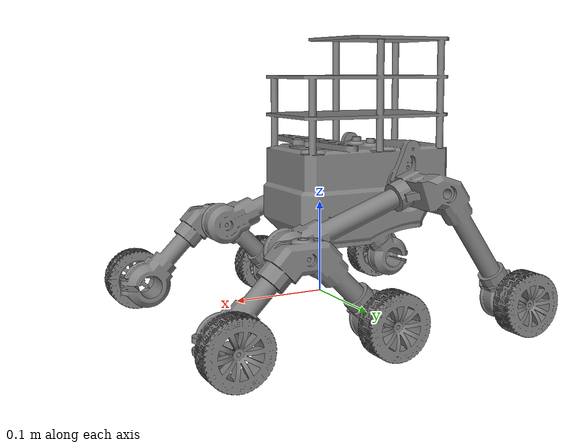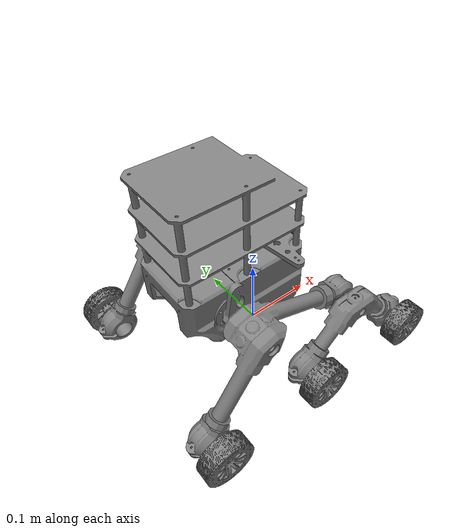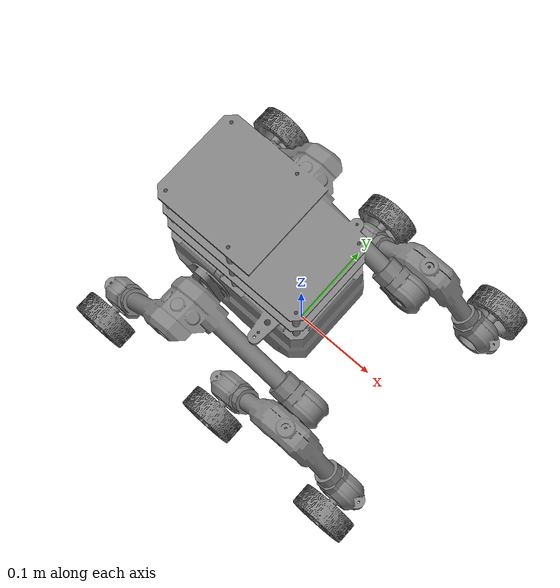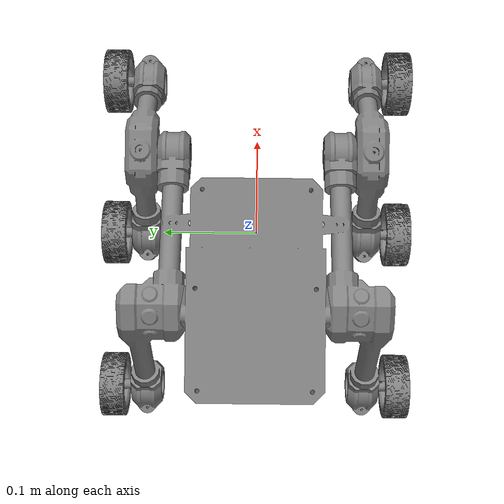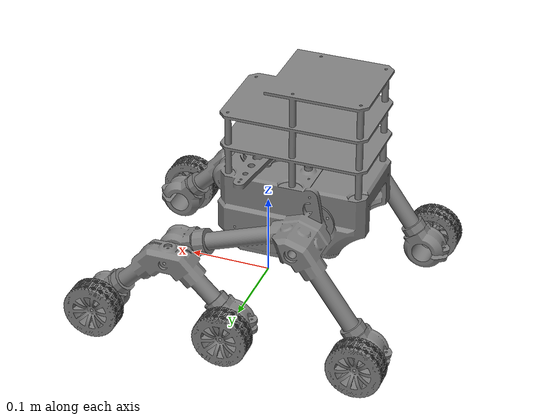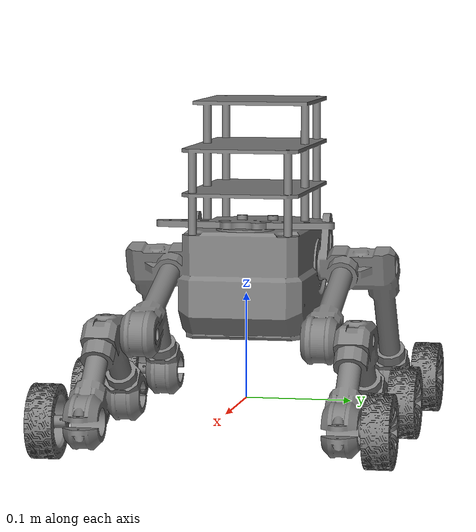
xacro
<?xml version="1.0"?>
<robot xmlns:xacro="http://www.ros.org/wiki/xacro" >

    <xacro:include filename="inertial_macros.xacro"/>

    <xacro:property name="chassis_length" value="0.299258"/>
    <xacro:property name="chassis_width" value="0.264"/>
    <xacro:property name="chassis_height" value="0.304902"/>
    <xacro:property name="chassis_mass" value="1.225156"/>
    <xacro:property name="arm_length" value="0.222788"/>
    <xacro:property name="arm_width" value="0.033"/>
    <xacro:property name="arm_height" value="0.111472"/>
    <xacro:property name="arm_mass" value="0.17912"/>
    <xacro:property name="wheel_radius" value="0.034"/>
    <xacro:property name="wheel_thickness" value="0.03085"/>
    <xacro:property name="wheel_mass" value="0.045987"/>

    <material name="grey">
        <color rgba="0.5 0.5 0.5 1"/>
    </material>

    <material name="red">
        <color rgba="1 0 0 1"/>
    </material>

    <!-- BASE LINK -->

    <link name ="base_link">

    </link>

    <!-- CHASSIS LINK -->

    <joint name="chassis_joint" type="fixed">
        <parent link="base_link"/>
        <child link="chassis"/>
        <origin xyz="0.046565 0 0.098366"/>
    </joint>

    <link name="chassis">
        <visual>
            <origin xyz="0 0 0"/>
            <geometry>
                <mesh filename="file:///home/shivam/rover_ws/src/rover_bot/description/meshes/chassis.stl"/>
            </geometry>
            <material name="grey"/>
        </visual>
        <collision>
            <origin xyz="-0.091666 0 0.028837"/>
            <geometry>
                <box size="${chassis_length} ${chassis_width} ${chassis_height}"/>
            </geometry>
        </collision>
        <inertial>
            <mass value="1.225156"/>
            <inertia ixx="0.01117" ixy="0.000002132725" ixz="-0.0002573" iyx="0.000002132725" iyy="0.01053" iyz="0.000005544541" izx="-0.0002573" izy="0.000005544541" izz="0.01191"/>
            <origin xyz="-0.091666 0.0 0.028837" rpy="0 0 0"/>
        </inertial>
    </link>
    <gazebo reference="chassis">
        <material>Gazebo/White</material>
    </gazebo>

    <!-- RIGHT ARM LINK -->

    <joint name="right_arm_joint" type="fixed">
        <parent link="chassis"/>
        <child link="right_arm"/>
        <origin xyz="0.034521 -0.100 -0.029025" />
    </joint>

    <link name="right_arm">
        <visual>
            <geometry>
                <mesh filename="file:///home/shivam/rover_ws/src/rover_bot/description/meshes/right_arm.stl"/>
            </geometry>
            <material name="grey"/>
        </visual>
        <collision>
            <origin xyz="0 -0.016946 -0.037256" rpy="0 0 0"/>
            <geometry>
                <box size="0.222788 0.033 0.111472"/>
            </geometry>
        </collision>
        <xacro:inertial_arm mass="${arm_mass}" >
            <origin xyz="0 -0.016946 -0.037256" rpy="0 0 0"/>
        </xacro:inertial_arm>
    </link>
    <gazebo reference="right_arm">
        <material>Gazebo/White</material>
    </gazebo>

    <!-- LEFT ARM LINK -->

    <joint name="left_arm_joint" type="fixed">
        <parent link="chassis"/>
        <child link="left_arm"/>
        <origin xyz="0.034521 0.100 -0.029025" rpy="0 0 ${pi}"/>
    </joint>

    <link name="left_arm">
        <visual>
            <geometry>
                <mesh filename="file:///home/shivam/rover_ws/src/rover_bot/description/meshes/left_arm.stl"/>
            </geometry>
            <material name="grey"/>
        </visual>
        <collision>
            <origin xyz="0 -0.016946 -0.037256" rpy="0 0 0"/>
            <geometry>
                <box size="0.222788 0.033 0.111472"/>
            </geometry>
        </collision>
        <xacro:inertial_arm mass="${arm_mass}" >
            <origin xyz="0 -0.016946 -0.037256" rpy="0 0 0"/>
        </xacro:inertial_arm>
    </link>
    <gazebo reference="left_arm">
        <material>Gazebo/White</material>
    </gazebo>

    <!-- WHEELS -->
    <!-- RIGHT MIDDLE WHEEL LINK -->

    <joint name="right_middle_wheel_joint" type="continuous">
        <parent link="base_link"/>
        <child link="right_middle_wheel"/>
        <origin xyz="0 -0.133 0" rpy="${pi/2} 0 0"/>
        <axis xyz="0 0 -1"/>
    </joint>

    <link name="right_middle_wheel">
        <visual>
            <origin xyz="0 0 0" rpy="0 ${pi/2} 0"/>
            <geometry>
                <mesh filename="file:///home/shivam/rover_ws/src/rover_bot/description/meshes/wheel.stl"/>
            </geometry>
            <material name="grey"/>
        </visual>
        <collision>
            <origin xyz="0 0 0.016326" rpy="0 0 0"/>
            <geometry>
                <sphere radius="${wheel_radius}"/>
            </geometry>
        </collision>
        <xacro:inertial_cylinder mass="${wheel_mass}" length="${wheel_thickness}" radius="${wheel_radius}">
            <origin xyz="0 0 0.016326" rpy="0 0 0"/>
        </xacro:inertial_cylinder>

    </link>
    <gazebo reference="right_middle_wheel">
        <material>Gazebo/White</material>
    </gazebo>

    <!-- RIGHT REAR WHEEL LINK -->

    <joint name="right_rear_wheel_joint" type="continuous">
        <parent link="base_link"/>
        <child link="right_rear_wheel"/>
        <origin xyz="-0.165 -0.133 0" rpy="${pi/2} 0 0"/>
        <axis xyz="0 0 -1"/>
    </joint>

    <link name="right_rear_wheel">
        <visual>
            <origin xyz="0 0 0" rpy="0 ${pi/2} 0"/>
            <geometry>
                <mesh filename="file:///home/shivam/rover_ws/src/rover_bot/description/meshes/wheel.stl"/>
            </geometry>
            <material name="grey"/>
        </visual>
        <collision>
            <origin xyz="0 0 0.016326" rpy="0 0 0"/>
            <geometry>
                <sphere radius="${wheel_radius}"/>
            </geometry>
        </collision>
        <xacro:inertial_cylinder mass="${wheel_mass}" length="${wheel_thickness}" radius="${wheel_radius}">
            <origin xyz="0 0 0.016326" rpy="0 0 0"/>
        </xacro:inertial_cylinder>
    </link>
    <gazebo reference="right_middle_wheel">
        <material>Gazebo/White</material>
    </gazebo>

    <!-- RIGHT FRONT WHEEL LINK -->

    <joint name="right_front_wheel_joint" type="continuous">
        <parent link="base_link"/>
        <child link="right_front_wheel"/>
        <origin xyz="0.165 -0.133 0" rpy="${pi/2} 0 0"/>
        <axis xyz="0 0 -1"/>
    </joint>

    <link name="right_front_wheel">
        <visual>
            <origin xyz="0 0 0" rpy="0 ${pi/2} 0"/>
            <geometry>
                <mesh filename="file:///home/shivam/rover_ws/src/rover_bot/description/meshes/wheel.stl"/>
            </geometry>
            <material name="grey"/>
        </visual>
        <collision>
            <origin xyz="0 0 0.016326" rpy="0 0 0"/>
            <geometry>
                <sphere radius="${wheel_radius}"/>
            </geometry>
        </collision>
        <xacro:inertial_cylinder mass="${wheel_mass}" length="${wheel_thickness}" radius="${wheel_radius}">
            <origin xyz="0 0 0.016326" rpy="0 0 0"/>
        </xacro:inertial_cylinder>
    </link>
    <gazebo reference="right_middle_wheel">
        <material>Gazebo/White</material>
    </gazebo>

    <!-- LEFT MIDDLE WHEEL LINK -->

    <joint name="left_middle_wheel_joint" type="continuous">
        <parent link="base_link"/>
        <child link="left_middle_wheel"/>
        <origin xyz="0 0.133 0" rpy="${pi/2} 0 0"/>
        <axis xyz="0 0 -1"/>
    </joint>

    <link name="left_middle_wheel">
        <visual>
            <origin xyz="0 0 0" rpy="0 -${pi/2} 0"/>
            <geometry>
                <mesh filename="file:///home/shivam/rover_ws/src/rover_bot/description/meshes/wheel.stl"/>
            </geometry>
            <material name="grey"/>
        </visual>
        <collision>
            <origin xyz="0 0 -0.016326" rpy="0 0 0"/>
            <geometry>
                <sphere radius="${wheel_radius}"/>
            </geometry>
        </collision>
        <xacro:inertial_cylinder mass="${wheel_mass}" length="${wheel_thickness}" radius="${wheel_radius}">
            <origin xyz="0 0 -0.016326" rpy="0 0 0"/>
        </xacro:inertial_cylinder>
    </link>
    <gazebo reference="left_middle_wheel">
        <material>Gazebo/White</material>
    </gazebo>

    <!-- LEFT REAR WHEEL LINK -->

    <joint name="left_rear_wheel_joint" type="continuous">
        <parent link="base_link"/>
        <child link="left_rear_wheel"/>
        <origin xyz="-0.165 0.133 0" rpy="${pi/2} 0 0"/>
        <axis xyz="0 0 -1"/>
    </joint>

    <link name="left_rear_wheel">
        <visual>
            <origin xyz="0 0 0" rpy="0 -${pi/2} 0"/>
            <geometry>
                <mesh filename="file:///home/shivam/rover_ws/src/rover_bot/description/meshes/wheel.stl"/>
            </geometry>
            <material name="grey"/>
        </visual>
        <collision>
            <origin xyz="0 0 -0.016326" rpy="0 0 0"/>
            <geometry>
                <sphere radius="${wheel_radius}"/>
            </geometry>
        </collision>
        <xacro:inertial_cylinder mass="${wheel_mass}" length="${wheel_thickness}" radius="${wheel_radius}">
            <origin xyz="0 0 -0.016326" rpy="0 0 0"/>
        </xacro:inertial_cylinder>
    </link>
    <gazebo reference="left_rear_wheel_joint">
        <material>Gazebo/White</material>
    </gazebo>

    <!-- LEFT FRONT WHEEL LINK -->

    <joint name="left_front_wheel_joint" type="continuous">
        <parent link="base_link"/>
        <child link="left_front_wheel"/>
        <origin xyz="0.165 0.133 0" rpy="${pi/2} 0 0"/>
        <axis xyz="0 0 -1"/>
    </joint>

    <link name="left_front_wheel">
        <visual>
            <origin xyz="0 0 0" rpy="0 -${pi/2} 0"/>
            <geometry>
                <mesh filename="file:///home/shivam/rover_ws/src/rover_bot/description/meshes/wheel.stl"/>
            </geometry>
            <material name="grey"/>
        </visual>
        <collision>
            <origin xyz="0 0 -0.016326" rpy="0 0 0"/>
            <geometry>
                <sphere radius="${wheel_radius}"/>
            </geometry>
        </collision>
        <xacro:inertial_cylinder mass="${wheel_mass}" length="${wheel_thickness}" radius="${wheel_radius}">
            <origin xyz="0 0 -0.016326" rpy="0 0 0"/>
        </xacro:inertial_cylinder>
    </link>
    <gazebo reference="left_front_wheel_joint">
        <material>Gazebo/White</material>
    </gazebo>

</robot>

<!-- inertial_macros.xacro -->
<robot xmlns:xacro="http://www.ros.org/wiki/xacro" >

    <xacro:macro name="inertial_box" params="mass x y z *origin">
        <inertial>
            <xacro:insert_block name="origin"/>
            <mass value="${mass}" />
            <inertia ixx="${(1/12) * mass * (y*y+z*z)}" ixy="0.0" ixz="0.0"
                    iyy="${(1/12) * mass * (x*x+z*z)}" iyz="0.0"
                    izz="${(1/12) * mass * (x*x+y*y)}" />
        </inertial>
    </xacro:macro>

    <xacro:macro name="inertial_arm" params="mass *origin">
        <inertial>
            <xacro:insert_block name="origin"/>
            <mass value="${mass}" />
            <inertia ixx="0.0001838" ixy="9.59e-9" ixz="2.662e-9" iyx="9.59e-9"
                    iyy="0.0007798" iyz="3.58241e-7" izx="2.662e-9"
                    izz="0.0006212" izy="3.58241e-7"/>
        </inertial>
    </xacro:macro>

    <xacro:macro name="inertial_cylinder" params="mass length radius *origin">
        <inertial>
            <xacro:insert_block name="origin"/>
            <mass value="${mass}" />
            <inertia ixx="${(1/12) * mass * (3*radius*radius + length*length)}" ixy="0.0" ixz="0.0"
                    iyy="${(1/12) * mass * (3*radius*radius + length*length)}" iyz="0.0"
                    izz="${(1/2) * mass * (radius*radius)}" />
        </inertial>
    </xacro:macro>

</robot>
